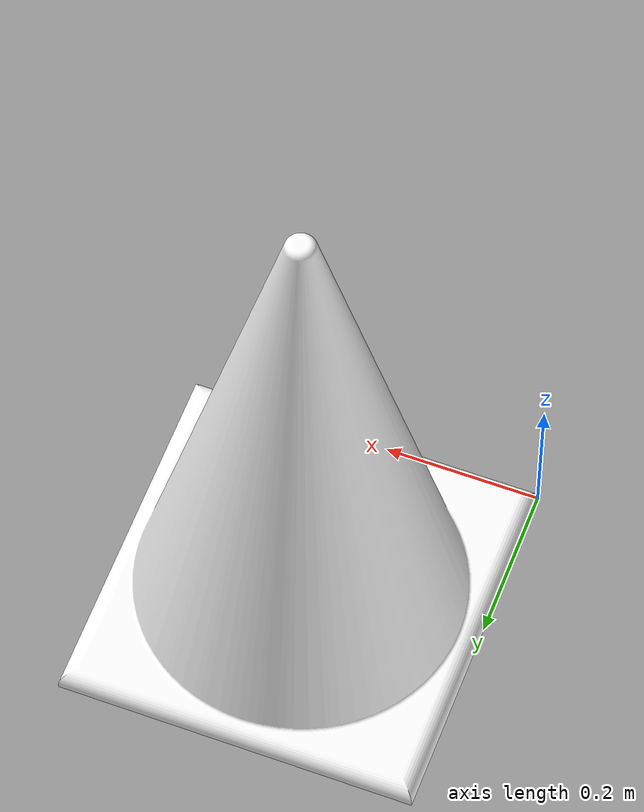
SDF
<?xml version="1.0" ?>
<sdf version="1.7">
  <model name="Triangle_Cone">
    <!-- Static means the model will not move, set to 'true' if it's a fixed object -->
    <static>true</static>

    <!-- Link is the primary building block for the model -->
    <link name="link">

      <!-- Visual properties (how the model looks) -->
      <visual name="visual">
        <geometry>
          <mesh>
            <!-- Path to the STL file -->
            <uri>model://triangle_cone/meshes/Triangle_Cone.STL</uri>
            <!-- Optional scale if you want to scale the model -->
            <scale>1.0 1.0 1.0</scale>
          </mesh>
        </geometry>

        <!-- Material can be added if you want to define the color/texture -->
        <material>
          <ambient>1 1 1 1</ambient> <!-- RGBA for ambient light -->
          <diffuse>1 1 1 1</diffuse> <!-- RGBA for diffuse reflection -->
          <specular>0.1 0.1 0.1 1</specular> <!-- RGBA for specular reflection -->
          <emissive>0 0 0 1</emissive> <!-- RGBA for emission -->
        </material>
      </visual>

      <!-- Collision properties (how Gazebo handles physical collisions) -->
      <collision name="collision">
        <geometry>
          <mesh>
            <!-- Same path to the STL file for collision geometry -->
            <uri>model://triangle_cone/meshes/Triangle_Cone.STL</uri>
            <scale>1.0 1.0 1.0</scale>
          </mesh>
        </geometry>
        <!-- Optional friction, restitution, and damping parameters for more advanced physics -->
        <surface>
          <friction>
            <ode>
              <mu>0.5</mu> <!-- Friction coefficient -->
              <mu2>0.5</mu2>
            </ode>
          </friction>
          <bounce>
            <restitution_coefficient>0.1</restitution_coefficient>
          </bounce>
          <contact>
            <ode>
              <soft_cfm>0.0</soft_cfm>
              <soft_erp>0.2</soft_erp>
            </ode>
          </contact>
        </surface>
      </collision>

      <!-- Inertial properties (mass and inertia for dynamic simulation) -->
      <inertial>
        <mass>1.0</mass> <!-- Set the mass of the model -->
        <!-- Inertia matrix: this is simplified and should be computed properly for complex models -->
        <inertia>
          <ixx>0.1</ixx>
          <iyy>0.1</iyy>
          <izz>0.1</izz>
        </inertia>
      </inertial>

    </link>
  </model>
</sdf>
